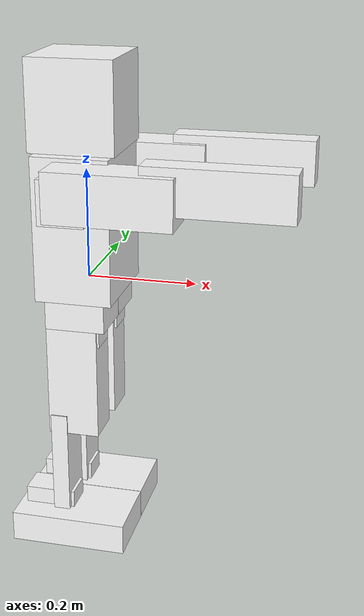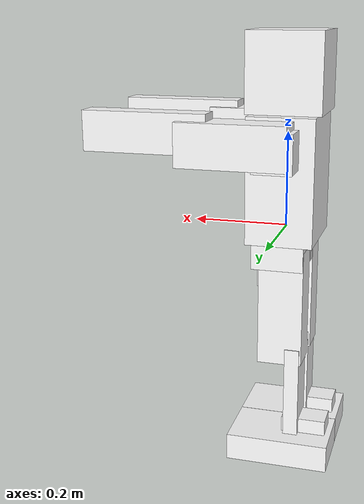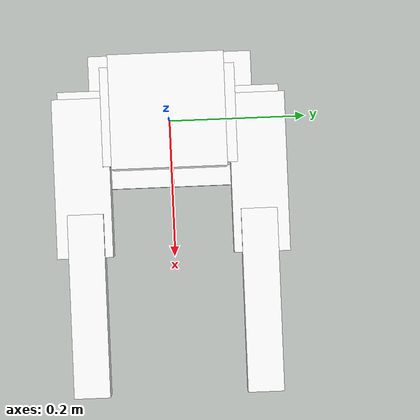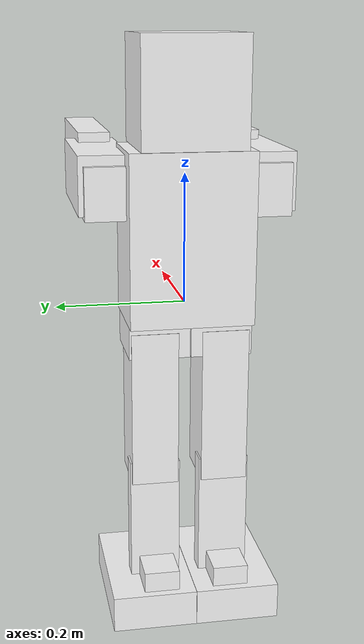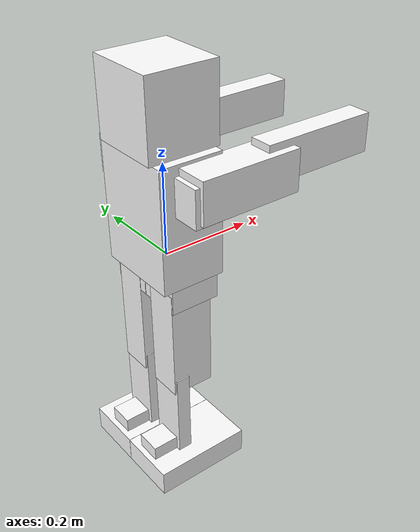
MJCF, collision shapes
<mujoco model="onshape">
  <compiler angle="radian" meshdir="NUgus/"/>
  <asset>
    <mesh name="torso_visual" file="torso_visual.stl"/>
    <mesh name="left_hip_yaw_visual" file="left_hip_yaw_visual.stl"/>
    <mesh name="left_hip_roll_visual" file="left_hip_roll_visual.stl"/>
    <mesh name="left_upper_leg_visual" file="left_upper_leg_visual.stl"/>
    <mesh name="left_lower_leg_visual" file="left_lower_leg_visual.stl"/>
    <mesh name="left_ankle_visual" file="left_ankle_visual.stl"/>
    <mesh name="left_foot_visual" file="left_foot_visual.stl"/>
    <mesh name="right_hip_yaw_visual" file="right_hip_yaw_visual.stl"/>
    <mesh name="right_hip_roll_visual" file="right_hip_roll_visual.stl"/>
    <mesh name="right_upper_leg_visual" file="right_upper_leg_visual.stl"/>
    <mesh name="right_lower_leg_visual" file="right_lower_leg_visual.stl"/>
    <mesh name="right_ankle_visual" file="right_ankle_visual.stl"/>
    <mesh name="right_foot_visual" file="right_foot_visual.stl"/>
    <mesh name="right_foot_base_visual" file="right_foot_base_visual.stl"/>
    <mesh name="neck_visual" file="neck_visual.stl"/>
    <mesh name="head_visual" file="head_visual.stl"/>
    <mesh name="right_camera_visual" file="right_camera_visual.stl"/>
    <mesh name="left_shoulder_visual" file="left_shoulder_visual.stl"/>
    <mesh name="left_upper_arm_visual" file="left_upper_arm_visual.stl"/>
    <mesh name="left_lower_arm_visual" file="left_lower_arm_visual.stl"/>
    <mesh name="right_shoulder_visual" file="right_shoulder_visual.stl"/>
    <mesh name="right_upper_arm_visual" file="right_upper_arm_visual.stl"/>
    <mesh name="right_lower_arm_visual" file="right_lower_arm_visual.stl"/>
  </asset>

  <default>
    <joint limited="true" solimplimit="0 0.99 0.01" stiffness="1" armature=".01" damping="1"/>
    <geom size="0.03 0 0" condim="1" friction="0.7 0.005 0.0001" solref="0.015 1" solimp="0.99 0.99 0.003"/>
    <general ctrllimited="true" ctrlrange="-1 1"/>
    <default class="humanoid">
      <default class="stiff_medium">
        <joint stiffness="10" damping="2"/>
      </default>
      <default class="stiff_medium_higher">
        <joint stiffness="50" damping="4"/>
      </default>
      <default class="stiff_high">
        <joint stiffness="200" damping="5"/>
      </default>
      <default class="sensor_site">
        <site type="sphere" size="0.01" group="4" rgba="1 0 0 .5"/>
      </default>
      <default class="contact">
        <geom condim="3" friction="1. 0.005 0.0001" solref="0.015 1" solimp="0.98 0.98 0.001" priority="1"/>
      </default>
    </default>
  </default>

  <worldbody>
    <geom type="mesh" contype="0" conaffinity="0" group="1" density="0" rgba="1 1 1 1" mesh="torso_visual"/>
    <geom size="0.0697546 0.0949914 0.130902" pos="-0.00200103 -1.04979e-05 0.108568" type="box" rgba="1 1 1 0.5"/>
    <body name="left_hip_yaw" pos="0 0.055 0" quat="1 0 0 0">
      <inertial pos="-0.0021828 -0.00894798 -0.0247563" quat="0.706738 0.705731 0.0325035 -0.0375176" mass="0.0594023" diaginertia="0.00011878 0.000103492 5.24089e-05"/>
      <joint name="left_hip_yaw" pos="0 0 0" axis="0 0 1" limited="true" range="-3.14159 3.14159"/>
      <geom type="mesh" contype="0" conaffinity="0" group="1" density="0" rgba="1 1 1 1" mesh="left_hip_yaw_visual"/>
      <geom size="0.05425 0.0470128 0.03675" pos="0 -0.00723724 -0.03675" type="box" rgba="1 1 1 0.5"/>
      <body name="left_hip_roll" pos="0.0221332 0 -0.0545" quat="0.707105 0 0.707108 0">
        <inertial pos="0.015733 -0.000686158 -0.0217073" quat="0.70707 0.00800622 -0.00800603 0.707053" mass="0.395953" diaginertia="0.000375935 0.000314298 0.000127658"/>
        <joint name="left_hip_roll" pos="0 0 0" axis="0 0 1" limited="true" range="-3.14159 3.14159"/>
        <geom type="mesh" contype="0" conaffinity="0" group="1" density="0" rgba="1 1 1 1" mesh="left_hip_roll_visual"/>
        <geom size="0.0362265 0.02765 0.046925" pos="0.0211382 0.00135 -0.026825" type="box" rgba="1 1 1 0.5"/>
        <body name="left_upper_leg" pos="0 0 0" quat="0.707105 -0.707108 0 0">
          <inertial pos="0.144296 0.0401097 0.000258488" quat="0.48018 0.474915 0.52246 0.520498" mass="0.313357" diaginertia="0.00167304 0.00160068 0.000213115"/>
          <joint name="left_hip_pitch" pos="0 0 0" axis="0 0 1" limited="true" range="-3.14159 3.14159"/>
          <geom type="mesh" contype="0" conaffinity="0" group="1" density="0" rgba="1 1 1 1" mesh="left_upper_leg_visual"/>
          <geom size="0.123135 0.0467353 0.0365" pos="0.103064 0.0303674 0" type="box" rgba="1 1 1 0.5"/>
          <body name="left_lower_leg" pos="0.206046 0.0569501 0" quat="1 0 0 0">
            <inertial pos="0.1001 0.00388186 -1.61259e-08" quat="0.500001 0.500001 0.499999 0.499999" mass="0.0893011" diaginertia="0.000408951 0.0003363 9.01254e-05"/>
            <joint name="left_knee_pitch" pos="0 0 0" axis="0 0 1" limited="true" range="-3.14159 3.14159"/>
            <geom type="mesh" contype="0" conaffinity="0" group="1" density="0" rgba="1 1 1 1" mesh="left_lower_leg_visual"/>
            <geom size="0.114601 0.0155 0.039" pos="0.100101 0.001 0" type="box" rgba="1 1 1 0.5"/>
            <body name="left_ankle" pos="0.200203 0 0" quat="1 0 0 0">
              <inertial pos="-0.015733 0.0219762 0.000512596" quat="0.508721 0.491668 -0.491137 0.508184" mass="0.329993" diaginertia="0.000265803 0.000265762 0.000157721"/>
              <joint name="left_ankle_pitch" pos="0 0 0" axis="0 0 1" limited="true" range="-3.14159 3.14159"/>
              <geom type="mesh" contype="0" conaffinity="0" group="1" density="0" rgba="1 1 1 1" mesh="left_ankle_visual"/>
              <geom size="0.0331382 0.047194 0.02765" pos="-0.01805 0.027094 -0.00166756" type="box" rgba="1 1 1 0.5"/>
              <body name="left_foot" pos="0 0 0" quat="0.707105 0.707108 0 0">
                <inertial pos="0.0248226 0.00798542 0.033284" quat="0.99979 -0.0089131 -9.26048e-05 -0.0184639" mass="0.245581" diaginertia="0.00134758 0.00108371 0.00033179"/>
                <joint name="left_ankle_roll" pos="0 0 0" axis="0 0 1" limited="true" range="-3.14159 3.14159"/>
                <geom type="mesh" contype="0" conaffinity="0" group="1" density="0" rgba="1 1 1 1" mesh="left_foot_visual"/>
                <geom size="0.0284966 0.0657907 0.107911" pos="0.00950344 0.0109437 0.0211599" type="box" rgba="1 1 1 0.5"/>
              </body>
            </body>
          </body>
        </body>
      </body>
    </body>
    <body name="right_hip_yaw" pos="0 -0.055 0" quat="1 0 0 0">
      <inertial pos="-0.00218277 0.0089479 -0.0247564" quat="0.705733 0.706736 0.0375273 -0.0325114" mass="0.0594022" diaginertia="0.000118779 0.000103492 5.24082e-05"/>
      <joint name="right_hip_yaw" pos="0 0 0" axis="0 0 1" limited="true" range="-3.14159 3.14159"/>
      <geom type="mesh" contype="0" conaffinity="0" group="1" density="0" rgba="1 1 1 1" mesh="right_hip_yaw_visual"/>
      <geom size="0.05425 0.0470128 0.03675" pos="0 0.00723724 -0.03675" type="box" rgba="1 1 1 0.5"/>
      <body name="right_hip_roll" pos="0.0221332 0 -0.0545" quat="0.707105 0 0.707108 0">
        <inertial pos="0.015733 -0.000232251 -0.0218286" quat="0.707049 0.00279235 -0.00279276 0.707153" mass="0.395953" diaginertia="0.000378041 0.000316367 0.000127621"/>
        <joint name="right_hip_roll" pos="0 0 0" axis="0 0 1" limited="true" range="-3.14159 3.14159"/>
        <geom type="mesh" contype="0" conaffinity="0" group="1" density="0" rgba="1 1 1 1" mesh="right_hip_roll_visual"/>
        <geom size="0.0331382 0.02765 0.04705" pos="0.01805 -0.00315 -0.02695" type="box" rgba="1 1 1 0.5"/>
        <body name="right_upper_leg" pos="0 0 0" quat="0.707105 -0.707108 0 0">
          <inertial pos="0.144343 0.0400917 -0.000278506" quat="0.47021 0.473824 0.526501 0.526488" mass="0.313809" diaginertia="0.00167983 0.00160132 0.000207139"/>
          <joint name="right_hip_pitch" pos="0 0 0" axis="0 0 1" limited="true" range="-3.14159 3.14159"/>
          <geom type="mesh" contype="0" conaffinity="0" group="1" density="0" rgba="1 1 1 1" mesh="right_upper_leg_visual"/>
          <geom size="0.123135 0.0467353 0.0365" pos="0.103064 0.0303674 -1.86265e-09" type="box" rgba="1 1 1 0.5"/>
          <body name="right_lower_leg" pos="0.206046 0.0569501 0" quat="1 0 0 0">
            <inertial pos="0.100103 0.00388186 1.61259e-08" quat="0.499999 0.499999 0.500001 0.500001" mass="0.0893011" diaginertia="0.000408951 0.0003363 9.01254e-05"/>
            <joint name="right_knee_pitch" pos="0 0 0" axis="0 0 1" limited="true" range="-3.14159 3.14159"/>
            <geom type="mesh" contype="0" conaffinity="0" group="1" density="0" rgba="1 1 1 1" mesh="right_lower_leg_visual"/>
            <geom size="0.114601 0.0155 0.039" pos="0.100101 0.001 0" type="box" rgba="1 1 1 0.5"/>
            <body name="right_ankle" pos="0.200203 0 0" quat="1 0 0 0">
              <inertial pos="-0.015733 0.0218226 0.000508968" quat="0.51022 0.492773 -0.489643 0.507051" mass="0.329993" diaginertia="0.00026369 0.000263648 0.000157719"/>
              <joint name="right_ankle_pitch" pos="0 0 0" axis="0 0 1" limited="false"/>
              <geom type="mesh" contype="0" conaffinity="0" group="1" density="0" rgba="1 1 1 1" mesh="right_ankle_visual"/>
              <geom size="0.0328441 0.047044 0.02765" pos="-0.0177559 0.026944 -0.00166756" type="box" rgba="1 1 1 0.5"/>
              <body name="right_foot" pos="0 0 0" quat="0.707105 0.707108 0 0">
                <inertial pos="0.024823 -0.00798676 0.0332808" quat="0.99979 0.0089119 -9.00788e-05 0.0184638" mass="0.245567" diaginertia="0.00134748 0.00108364 0.000331758"/>
                <joint name="right_ankle_roll" pos="0 0 0" axis="0 0 1" limited="true" range="-3.14159 3.14159"/>
                <geom type="mesh" contype="0" conaffinity="0" group="1" density="0" rgba="1 1 1 1" mesh="right_foot_visual"/>
                <geom size="0.0284933 0.0657897 0.107911" pos="0.00950672 -0.0109447 0.0211599" type="box" rgba="1 1 1 0.5"/>
                <geom pos="0.038 0 0" quat="0.707105 0 -0.707108 0" type="mesh" contype="0" conaffinity="0" group="1" density="0" rgba="0.615686 0.811765 0.929412 1" mesh="right_foot_base_visual"/>
                <geom size="5e-06 5.08174e-06 5e-06" pos="0.037995 0 -1.8366e-11" quat="0.707105 0 -0.707108 0" type="box" rgba="1 1 1 0.5"/>
              </body>
            </body>
          </body>
        </body>
      </body>
    </body>
    <body name="neck" pos="-0.008 0 0.20825" quat="1.32679e-06 0 0 -1">
      <inertial pos="-0.000244686 -0.000118134 0.0329091" quat="0.998443 0.0557737 1.07166e-07 -1.91845e-06" mass="0.165011" diaginertia="6.78379e-05 5.68579e-05 3.82813e-05"/>
      <joint name="neck_yaw" pos="-0.008 0 0.20825" axis="0 0 1" limited="true" range="-3.14159 3.14159"/>
      <geom type="mesh" contype="0" conaffinity="0" group="1" density="0" rgba="1 1 1 1" mesh="neck_visual"/>
      <geom size="0.0201 0.025 0.0314176" pos="-0.000244711 -0.00275529 0.0306824" type="box" rgba="1 1 1 0.5"/>
      <body name="head" pos="-0.00024471 -0.000255294 0.0481" quat="0.499998 0.5 0.5 -0.500002">
        <inertial pos="-0.0665563 -0.0103216 -0.000100617" quat="0.999969 -0.000336797 -0.00449046 0.00648687" mass="0.473503" diaginertia="0.00196866 0.00145321 0.00107438"/>
        <joint name="head_pitch" pos="0 0 0" axis="0 0 1" limited="true" range="-3.14159 3.14159"/>
        <geom type="mesh" contype="0" conaffinity="0" group="1" density="0" rgba="1 1 1 1" mesh="head_visual"/>
        <geom size="0.0811188 0.0778217 0.0788984" pos="-0.0659288 -0.00433207 -0.000205018" type="box" rgba="1 1 1 0.5"/>
        <geom pos="-0.0648803 -0.0699522 -0.034205" quat="0.508649 0.508651 -0.491199 -0.491197" type="mesh" contype="0" conaffinity="0" group="1" density="0" rgba="0.615686 0.811765 0.929412 1" mesh="right_camera_visual"/>
        <geom size="5e-06 5.08174e-06 5e-06" pos="-0.0648853 -0.0699524 -0.034205" quat="0.508649 0.508651 -0.491199 -0.491197" type="box" rgba="0.615686 0.811765 0.929412 0.2"/>
      </body>
    </body>
    <body name="left_shoulder" pos="0 0.077 0.17725" quat="0.499998 -0.5 0.5 0.500002">
      <inertial pos="-3.61374e-05 -0.00254925 0.0287427" quat="0.618495 0.346197 0.615355 0.344891" mass="0.0845502" diaginertia="9.98768e-05 9.09162e-05 7.30289e-05"/>
      <joint name="left_shoulder_pitch" pos="0 0.0106 0.1616" axis="0 0 1" limited="true" range="-3.14159 3.14159"/>
      <geom type="mesh" contype="0" conaffinity="0" group="1" density="0" rgba="1 1 1 1" mesh="left_shoulder_visual"/>
      <geom size="0.04 0.040721 0.0396866" pos="0 -0.000721047 0.0396866" type="box" rgba="1 1 1 0.5"/>
      <body name="left_upper_arm" pos="0 -0.0100012 0.0479124" quat="0.499998 0.5 -0.500002 -0.5">
        <inertial pos="0.045902 0.000372495 9.27204e-06" quat="0.346504 0.576301 -0.375287 0.637943" mass="0.29923" diaginertia="0.00098868 0.000637586 0.000573833"/>
        <joint name="left_shoulder_roll" pos="0 0 0" axis="0 0 1" limited="true" range="-3.14159 3.14159"/>
        <geom type="mesh" contype="0" conaffinity="0" group="1" density="0" rgba="1 1 1 1" mesh="left_upper_arm_visual"/>
        <geom size="0.112419 0.0395114 0.0447976" pos="0.0730323 -1.39214e-05 0.0106963" type="box" rgba="1 1 1 0.5"/>
        <body name="left_lower_arm" pos="0.1575 -5.57465e-05 0.02695" quat="0.499998 -0.5 0.5 0.500002">
          <inertial pos="-0.000605553 -0.0509966 6.9181e-05" quat="0.568214 0.433479 -0.53189 0.454226" mass="0.287325" diaginertia="0.00115275 0.000789823 0.000530221"/>
          <joint name="left_elbow_pitch" pos="0 0 0" axis="0 0 1" limited="true" range="-3.14159 3.14159"/>
          <geom type="mesh" contype="0" conaffinity="0" group="1" density="0" rgba="1 1 1 1" mesh="left_lower_arm_visual"/>
          <geom size="0.041286 0.129149 0.0254608" pos="-0.00247871 -0.0956493 -0.00252151" type="box" rgba="1 1 1 0.5"/>
        </body>
      </body>
    </body>
    <body name="right_shoulder" pos="0 -0.077 0.17725" quat="0.499998 -0.5 0.5 0.500002">
      <inertial pos="-3.46247e-05 -0.00254925 -0.0287427" quat="0.346201 0.618498 0.344878 0.615357" mass="0.0845501" diaginertia="9.98771e-05 9.09162e-05 7.3029e-05"/>
      <joint name="right_shoulder_pitch" pos="0 -0.0106 0.1616" axis="0 0 1" limited="true" range="-3.14159 3.14159"/>
      <geom type="mesh" contype="0" conaffinity="0" group="1" density="0" rgba="1 1 1 1" mesh="right_shoulder_visual"/>
      <geom size="0.04 0.0407336 0.0396809" pos="0 -0.000733595 -0.0396809" type="box" rgba="1 1 1 0.5"/>
      <body name="right_upper_arm" pos="0 -0.0100012 -0.0479124" quat="0.499998 0.5 -0.500002 -0.5">
        <inertial pos="0.0458986 -0.000371241 0.000118834" quat="0.327762 0.587042 -0.375964 0.637656" mass="0.299218" diaginertia="0.000988599 0.000640993 0.000570263"/>
        <joint name="right_shoulder_roll" pos="0 0 0" axis="0 0 1" limited="true" range="-3.14159 3.14159"/>
        <geom type="mesh" contype="0" conaffinity="0" group="1" density="0" rgba="1 1 1 1" mesh="right_upper_arm_visual"/>
        <geom size="0.112415 0.0395114 0.0447976" pos="0.0730282 1.39214e-05 0.0106963" type="box" rgba="1 1 1 0.5"/>
        <body name="right_lower_arm" pos="0.1575 5.57465e-05 0.02695" quat="0.499998 -0.5 0.5 0.500002">
          <inertial pos="-0.00060488 -0.0510002 -6.85101e-05" quat="0.456626 0.549865 -0.476171 0.512252" mass="0.28735" diaginertia="0.00115298 0.000782489 0.000537795"/>
          <joint name="right_elbow_pitch" pos="0 0 0" axis="0 0 1" limited="true" range="-3.14159 3.14159"/>
          <geom type="mesh" contype="0" conaffinity="0" group="1" density="0" rgba="1 1 1 1" mesh="right_lower_arm_visual"/>
          <geom size="0.041286 0.129159 0.0254784" pos="-0.00247871 -0.0956591 0.0025391" type="box" rgba="1 1 1 0.5"/>
        </body>
      </body>
    </body>
  </worldbody>

  <actuator>
    <!-- Physical limits of the actuator. -->
    <!-- Values taken from https://www.universal-robots.com/articles/ur-articles/max-joint-torques/ -->
    <motor ctrllimited="true" ctrlrange="-150.0 150.0" joint="left_hip_yaw" name="torq_j1"/>
    <motor ctrllimited="true" ctrlrange="-150.0 150.0" joint="left_hip_roll" name="torq_j2"/>
    <motor ctrllimited="true" ctrlrange="-150.0 150.0" joint="left_hip_pitch" name="torq_j3"/>
    <motor ctrllimited="true" ctrlrange="-150.0 150.0" joint="left_knee_pitch" name="torq_j4"/>
    <motor ctrllimited="true" ctrlrange="-150.0 150.0" joint="left_ankle_pitch" name="torq_j5"/>
    <motor ctrllimited="true" ctrlrange="-150.0 150.0" joint="left_ankle_roll" name="torq_j6"/>

    <motor ctrllimited="true" ctrlrange="-150.0 150.0" joint="right_hip_yaw" name="torq_j7"/>
    <motor ctrllimited="true" ctrlrange="-150.0 150.0" joint="right_hip_roll" name="torq_j8"/>
    <motor ctrllimited="true" ctrlrange="-150.0 150.0" joint="right_hip_pitch" name="torq_j9"/>
    <motor ctrllimited="true" ctrlrange="-150.0 150.0" joint="right_knee_pitch" name="torq_j10"/>
    <motor ctrllimited="true" ctrlrange="-150.0 150.0" joint="right_ankle_pitch" name="torq_j11"/>
    <motor ctrllimited="true" ctrlrange="-150.0 150.0" joint="right_ankle_roll" name="torq_j12"/>

    <motor ctrllimited="true" ctrlrange="-150.0 150.0" joint="neck_yaw" name="torq_j13"/>
    <motor ctrllimited="true" ctrlrange="-150.0 150.0" joint="head_pitch" name="torq_j14"/>

    <motor ctrllimited="true" ctrlrange="-360.0 360.0" joint="left_shoulder_pitch" name="torq_j15"/>
    <motor ctrllimited="true" ctrlrange="-150.0 150.0" joint="left_shoulder_roll" name="torq_j16"/>
    <motor ctrllimited="true" ctrlrange="-150.0 150.0" joint="left_elbow_pitch" name="torq_j17"/>
    <motor ctrllimited="true" ctrlrange="-150.0 150.0" joint="right_shoulder_pitch" name="torq_j18"/>
    <motor ctrllimited="true" ctrlrange="-150.0 150.0" joint="right_shoulder_roll" name="torq_j19"/>
    <motor ctrllimited="true" ctrlrange="-150.0 150.0" joint="right_elbow_pitch" name="torq_j20"/>
  </actuator>
</mujoco>
